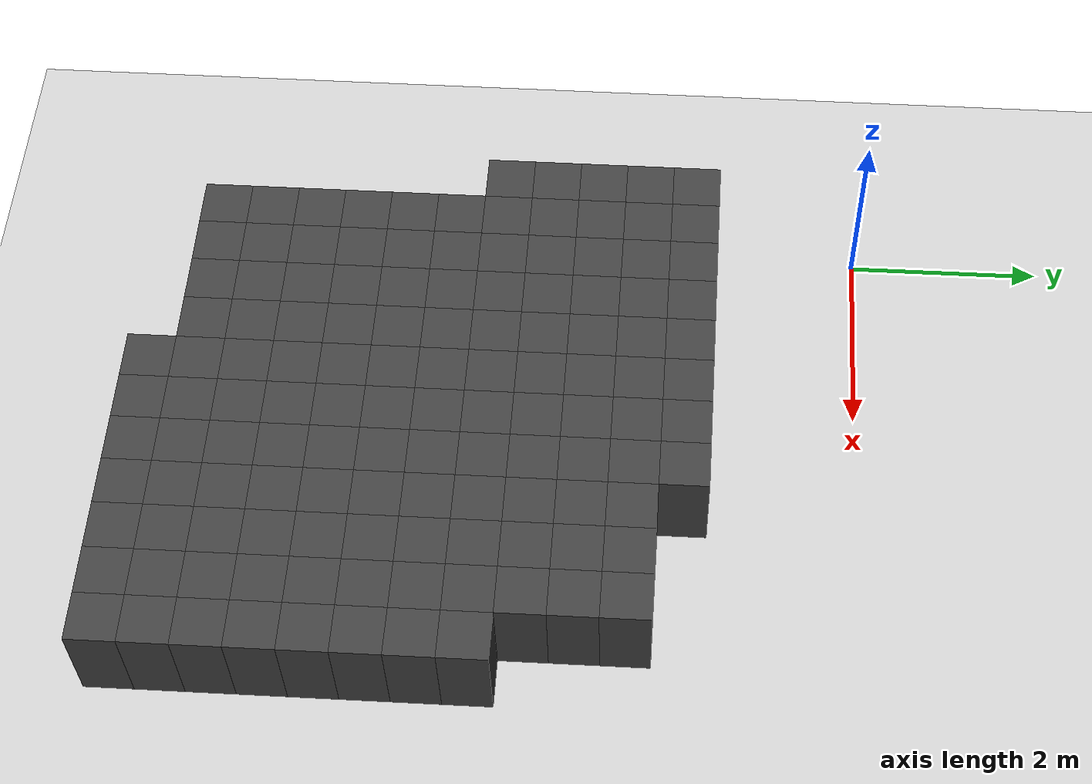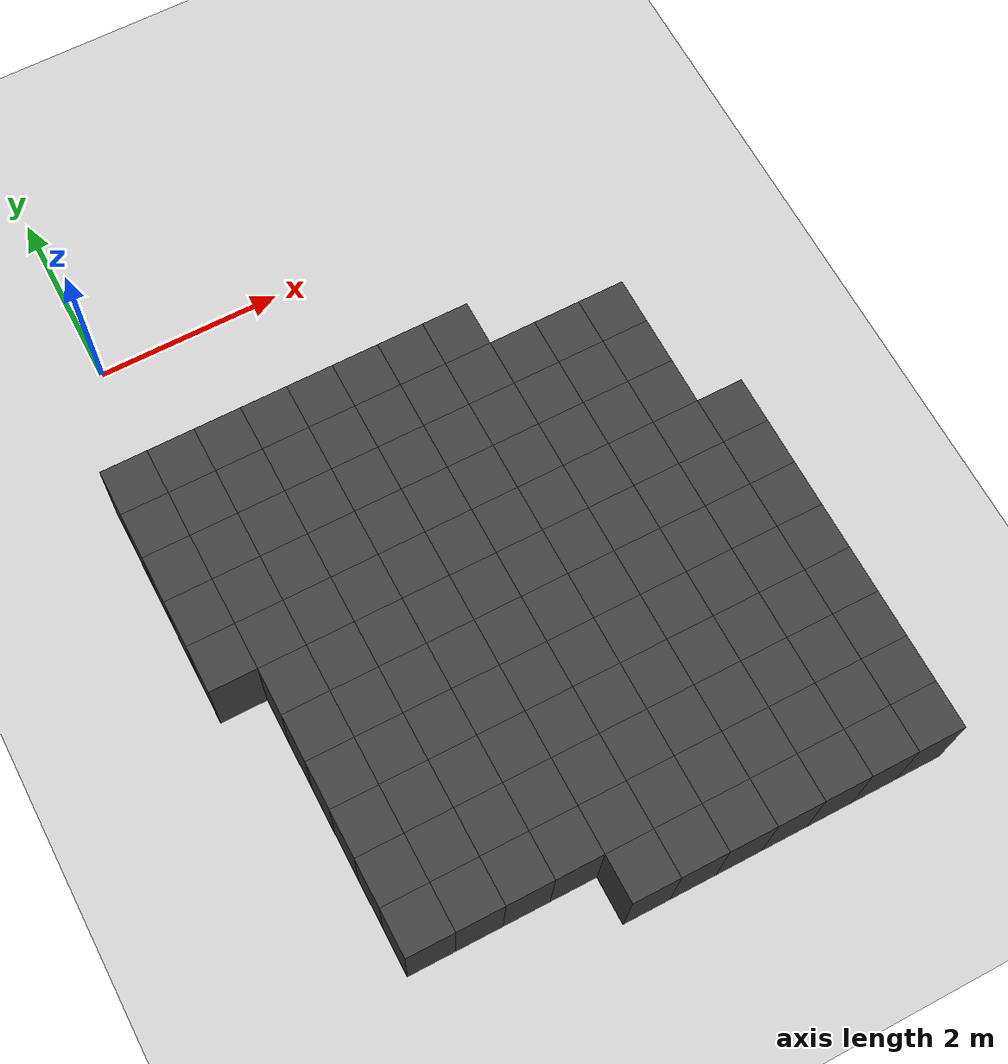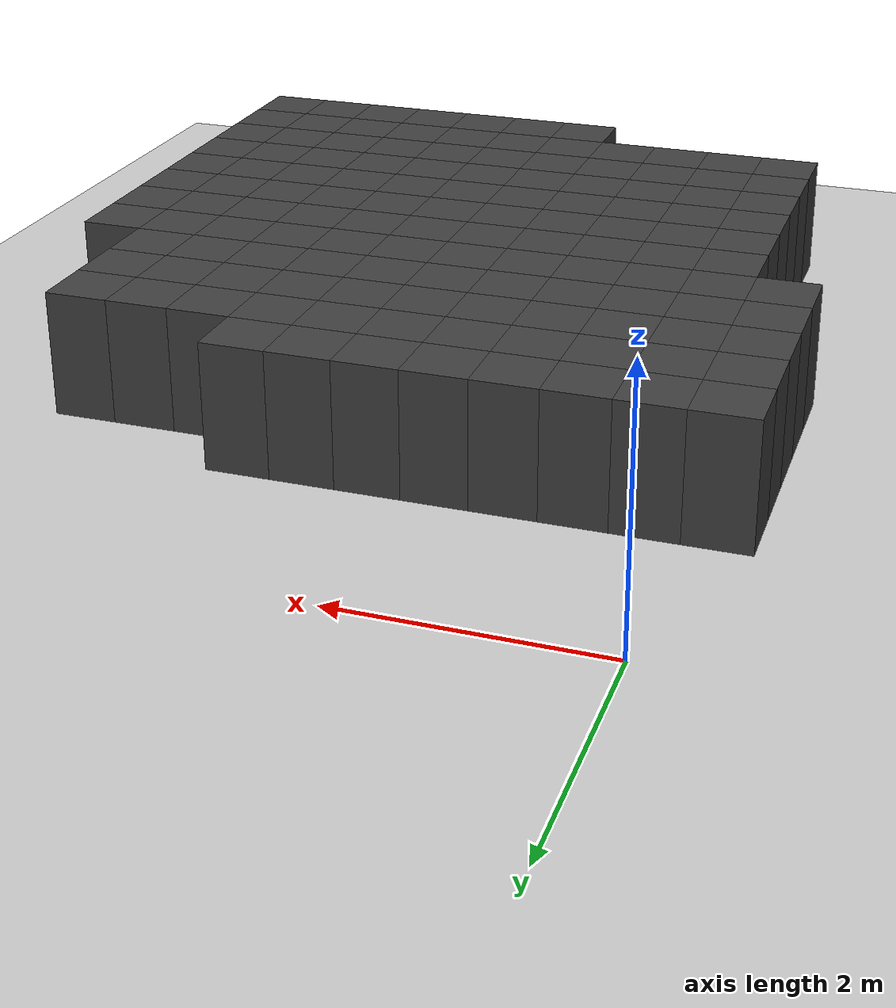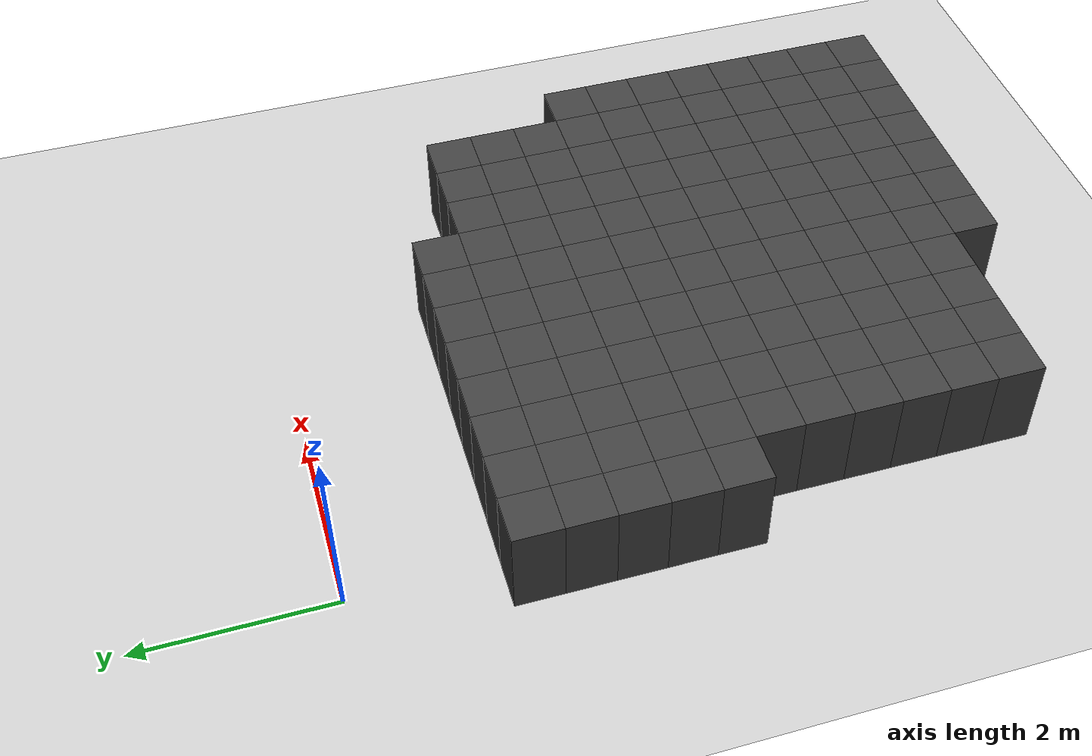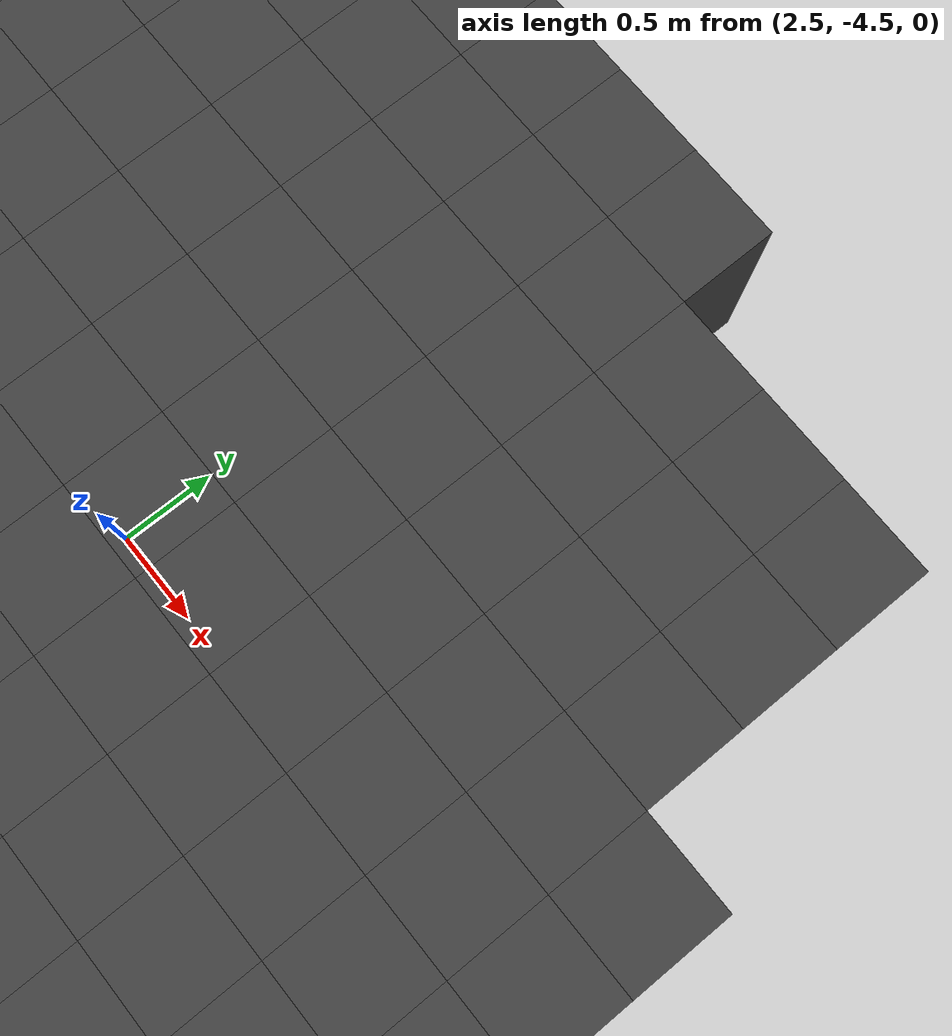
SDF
<sdf version="1.7">
 <world name="map_10764">
  <model name="ground_plane">
   <static>true</static>
   <link name="link">
    <collision name="collision">
     <geometry><plane><normal>0 0 1</normal><size>200 200</size></plane></geometry>
    </collision>
    <visual name="visual">
     <geometry><plane><normal>0 0 1</normal><size>200 200</size></plane></geometry>
     <material><ambient>0.8 0.8 0.8 1</ambient><diffuse>0.8 0.8 0.8 1</diffuse></material>
    </visual>
   </link>
  </model>
  <model name="maze_environment">
   <static>true</static>
   <link name="wall_1144">
    <pose>-0.250 -1.750 0.500 0 0 0</pose>
    <collision name="col"><geometry><box><size>0.5 0.5 1.0</size></box></geometry></collision>
    <visual name="vis">
     <geometry><box><size>0.5 0.5 1.0</size></box></geometry>
     <material><ambient>0.15 0.15 0.15 1</ambient><diffuse>0.25 0.25 0.25 1</diffuse></material>
    </visual>
   </link>
   <link name="wall_1145">
    <pose>0.250 -1.750 0.500 0 0 0</pose>
    <collision name="col"><geometry><box><size>0.5 0.5 1.0</size></box></geometry></collision>
    <visual name="vis">
     <geometry><box><size>0.5 0.5 1.0</size></box></geometry>
     <material><ambient>0.15 0.15 0.15 1</ambient><diffuse>0.25 0.25 0.25 1</diffuse></material>
    </visual>
   </link>
   <link name="wall_1146">
    <pose>0.750 -1.750 0.500 0 0 0</pose>
    <collision name="col"><geometry><box><size>0.5 0.5 1.0</size></box></geometry></collision>
    <visual name="vis">
     <geometry><box><size>0.5 0.5 1.0</size></box></geometry>
     <material><ambient>0.15 0.15 0.15 1</ambient><diffuse>0.25 0.25 0.25 1</diffuse></material>
    </visual>
   </link>
   <link name="wall_1147">
    <pose>1.250 -1.750 0.500 0 0 0</pose>
    <collision name="col"><geometry><box><size>0.5 0.5 1.0</size></box></geometry></collision>
    <visual name="vis">
     <geometry><box><size>0.5 0.5 1.0</size></box></geometry>
     <material><ambient>0.15 0.15 0.15 1</ambient><diffuse>0.25 0.25 0.25 1</diffuse></material>
    </visual>
   </link>
   <link name="wall_1148">
    <pose>1.750 -1.750 0.500 0 0 0</pose>
    <collision name="col"><geometry><box><size>0.5 0.5 1.0</size></box></geometry></collision>
    <visual name="vis">
     <geometry><box><size>0.5 0.5 1.0</size></box></geometry>
     <material><ambient>0.15 0.15 0.15 1</ambient><diffuse>0.25 0.25 0.25 1</diffuse></material>
    </visual>
   </link>
   <link name="wall_1149">
    <pose>2.250 -1.750 0.500 0 0 0</pose>
    <collision name="col"><geometry><box><size>0.5 0.5 1.0</size></box></geometry></collision>
    <visual name="vis">
     <geometry><box><size>0.5 0.5 1.0</size></box></geometry>
     <material><ambient>0.15 0.15 0.15 1</ambient><diffuse>0.25 0.25 0.25 1</diffuse></material>
    </visual>
   </link>
   <link name="wall_1150">
    <pose>2.750 -1.750 0.500 0 0 0</pose>
    <collision name="col"><geometry><box><size>0.5 0.5 1.0</size></box></geometry></collision>
    <visual name="vis">
     <geometry><box><size>0.5 0.5 1.0</size></box></geometry>
     <material><ambient>0.15 0.15 0.15 1</ambient><diffuse>0.25 0.25 0.25 1</diffuse></material>
    </visual>
   </link>
   <link name="wall_1151">
    <pose>3.250 -1.750 0.500 0 0 0</pose>
    <collision name="col"><geometry><box><size>0.5 0.5 1.0</size></box></geometry></collision>
    <visual name="vis">
     <geometry><box><size>0.5 0.5 1.0</size></box></geometry>
     <material><ambient>0.15 0.15 0.15 1</ambient><diffuse>0.25 0.25 0.25 1</diffuse></material>
    </visual>
   </link>
   <link name="wall_1185">
    <pose>-0.250 -2.250 0.500 0 0 0</pose>
    <collision name="col"><geometry><box><size>0.5 0.5 1.0</size></box></geometry></collision>
    <visual name="vis">
     <geometry><box><size>0.5 0.5 1.0</size></box></geometry>
     <material><ambient>0.15 0.15 0.15 1</ambient><diffuse>0.25 0.25 0.25 1</diffuse></material>
    </visual>
   </link>
   <link name="wall_1186">
    <pose>0.250 -2.250 0.500 0 0 0</pose>
    <collision name="col"><geometry><box><size>0.5 0.5 1.0</size></box></geometry></collision>
    <visual name="vis">
     <geometry><box><size>0.5 0.5 1.0</size></box></geometry>
     <material><ambient>0.15 0.15 0.15 1</ambient><diffuse>0.25 0.25 0.25 1</diffuse></material>
    </visual>
   </link>
   <link name="wall_1187">
    <pose>0.750 -2.250 0.500 0 0 0</pose>
    <collision name="col"><geometry><box><size>0.5 0.5 1.0</size></box></geometry></collision>
    <visual name="vis">
     <geometry><box><size>0.5 0.5 1.0</size></box></geometry>
     <material><ambient>0.15 0.15 0.15 1</ambient><diffuse>0.25 0.25 0.25 1</diffuse></material>
    </visual>
   </link>
   <link name="wall_1188">
    <pose>1.250 -2.250 0.500 0 0 0</pose>
    <collision name="col"><geometry><box><size>0.5 0.5 1.0</size></box></geometry></collision>
    <visual name="vis">
     <geometry><box><size>0.5 0.5 1.0</size></box></geometry>
     <material><ambient>0.15 0.15 0.15 1</ambient><diffuse>0.25 0.25 0.25 1</diffuse></material>
    </visual>
   </link>
   <link name="wall_1189">
    <pose>1.750 -2.250 0.500 0 0 0</pose>
    <collision name="col"><geometry><box><size>0.5 0.5 1.0</size></box></geometry></collision>
    <visual name="vis">
     <geometry><box><size>0.5 0.5 1.0</size></box></geometry>
     <material><ambient>0.15 0.15 0.15 1</ambient><diffuse>0.25 0.25 0.25 1</diffuse></material>
    </visual>
   </link>
   <link name="wall_1190">
    <pose>2.250 -2.250 0.500 0 0 0</pose>
    <collision name="col"><geometry><box><size>0.5 0.5 1.0</size></box></geometry></collision>
    <visual name="vis">
     <geometry><box><size>0.5 0.5 1.0</size></box></geometry>
     <material><ambient>0.15 0.15 0.15 1</ambient><diffuse>0.25 0.25 0.25 1</diffuse></material>
    </visual>
   </link>
   <link name="wall_1191">
    <pose>2.750 -2.250 0.500 0 0 0</pose>
    <collision name="col"><geometry><box><size>0.5 0.5 1.0</size></box></geometry></collision>
    <visual name="vis">
     <geometry><box><size>0.5 0.5 1.0</size></box></geometry>
     <material><ambient>0.15 0.15 0.15 1</ambient><diffuse>0.25 0.25 0.25 1</diffuse></material>
    </visual>
   </link>
   <link name="wall_1192">
    <pose>3.250 -2.250 0.500 0 0 0</pose>
    <collision name="col"><geometry><box><size>0.5 0.5 1.0</size></box></geometry></collision>
    <visual name="vis">
     <geometry><box><size>0.5 0.5 1.0</size></box></geometry>
     <material><ambient>0.15 0.15 0.15 1</ambient><diffuse>0.25 0.25 0.25 1</diffuse></material>
    </visual>
   </link>
   <link name="wall_1193">
    <pose>3.750 -2.250 0.500 0 0 0</pose>
    <collision name="col"><geometry><box><size>0.5 0.5 1.0</size></box></geometry></collision>
    <visual name="vis">
     <geometry><box><size>0.5 0.5 1.0</size></box></geometry>
     <material><ambient>0.15 0.15 0.15 1</ambient><diffuse>0.25 0.25 0.25 1</diffuse></material>
    </visual>
   </link>
   <link name="wall_1194">
    <pose>4.250 -2.250 0.500 0 0 0</pose>
    <collision name="col"><geometry><box><size>0.5 0.5 1.0</size></box></geometry></collision>
    <visual name="vis">
     <geometry><box><size>0.5 0.5 1.0</size></box></geometry>
     <material><ambient>0.15 0.15 0.15 1</ambient><diffuse>0.25 0.25 0.25 1</diffuse></material>
    </visual>
   </link>
   <link name="wall_1195">
    <pose>4.750 -2.250 0.500 0 0 0</pose>
    <collision name="col"><geometry><box><size>0.5 0.5 1.0</size></box></geometry></collision>
    <visual name="vis">
     <geometry><box><size>0.5 0.5 1.0</size></box></geometry>
     <material><ambient>0.15 0.15 0.15 1</ambient><diffuse>0.25 0.25 0.25 1</diffuse></material>
    </visual>
   </link>
   <link name="wall_1226">
    <pose>-0.250 -2.750 0.500 0 0 0</pose>
    <collision name="col"><geometry><box><size>0.5 0.5 1.0</size></box></geometry></collision>
    <visual name="vis">
     <geometry><box><size>0.5 0.5 1.0</size></box></geometry>
     <material><ambient>0.15 0.15 0.15 1</ambient><diffuse>0.25 0.25 0.25 1</diffuse></material>
    </visual>
   </link>
   <link name="wall_1227">
    <pose>0.250 -2.750 0.500 0 0 0</pose>
    <collision name="col"><geometry><box><size>0.5 0.5 1.0</size></box></geometry></collision>
    <visual name="vis">
     <geometry><box><size>0.5 0.5 1.0</size></box></geometry>
     <material><ambient>0.15 0.15 0.15 1</ambient><diffuse>0.25 0.25 0.25 1</diffuse></material>
    </visual>
   </link>
   <link name="wall_1228">
    <pose>0.750 -2.750 0.500 0 0 0</pose>
    <collision name="col"><geometry><box><size>0.5 0.5 1.0</size></box></geometry></collision>
    <visual name="vis">
     <geometry><box><size>0.5 0.5 1.0</size></box></geometry>
     <material><ambient>0.15 0.15 0.15 1</ambient><diffuse>0.25 0.25 0.25 1</diffuse></material>
    </visual>
   </link>
   <link name="wall_1229">
    <pose>1.250 -2.750 0.500 0 0 0</pose>
    <collision name="col"><geometry><box><size>0.5 0.5 1.0</size></box></geometry></collision>
    <visual name="vis">
     <geometry><box><size>0.5 0.5 1.0</size></box></geometry>
     <material><ambient>0.15 0.15 0.15 1</ambient><diffuse>0.25 0.25 0.25 1</diffuse></material>
    </visual>
   </link>
   <link name="wall_1230">
    <pose>1.750 -2.750 0.500 0 0 0</pose>
    <collision name="col"><geometry><box><size>0.5 0.5 1.0</size></box></geometry></collision>
    <visual name="vis">
     <geometry><box><size>0.5 0.5 1.0</size></box></geometry>
     <material><ambient>0.15 0.15 0.15 1</ambient><diffuse>0.25 0.25 0.25 1</diffuse></material>
    </visual>
   </link>
   <link name="wall_1231">
    <pose>2.250 -2.750 0.500 0 0 0</pose>
    <collision name="col"><geometry><box><size>0.5 0.5 1.0</size></box></geometry></collision>
    <visual name="vis">
     <geometry><box><size>0.5 0.5 1.0</size></box></geometry>
     <material><ambient>0.15 0.15 0.15 1</ambient><diffuse>0.25 0.25 0.25 1</diffuse></material>
    </visual>
   </link>
   <link name="wall_1232">
    <pose>2.750 -2.750 0.500 0 0 0</pose>
    <collision name="col"><geometry><box><size>0.5 0.5 1.0</size></box></geometry></collision>
    <visual name="vis">
     <geometry><box><size>0.5 0.5 1.0</size></box></geometry>
     <material><ambient>0.15 0.15 0.15 1</ambient><diffuse>0.25 0.25 0.25 1</diffuse></material>
    </visual>
   </link>
   <link name="wall_1233">
    <pose>3.250 -2.750 0.500 0 0 0</pose>
    <collision name="col"><geometry><box><size>0.5 0.5 1.0</size></box></geometry></collision>
    <visual name="vis">
     <geometry><box><size>0.5 0.5 1.0</size></box></geometry>
     <material><ambient>0.15 0.15 0.15 1</ambient><diffuse>0.25 0.25 0.25 1</diffuse></material>
    </visual>
   </link>
   <link name="wall_1234">
    <pose>3.750 -2.750 0.500 0 0 0</pose>
    <collision name="col"><geometry><box><size>0.5 0.5 1.0</size></box></geometry></collision>
    <visual name="vis">
     <geometry><box><size>0.5 0.5 1.0</size></box></geometry>
     <material><ambient>0.15 0.15 0.15 1</ambient><diffuse>0.25 0.25 0.25 1</diffuse></material>
    </visual>
   </link>
   <link name="wall_1235">
    <pose>4.250 -2.750 0.500 0 0 0</pose>
    <collision name="col"><geometry><box><size>0.5 0.5 1.0</size></box></geometry></collision>
    <visual name="vis">
     <geometry><box><size>0.5 0.5 1.0</size></box></geometry>
     <material><ambient>0.15 0.15 0.15 1</ambient><diffuse>0.25 0.25 0.25 1</diffuse></material>
    </visual>
   </link>
   <link name="wall_1236">
    <pose>4.750 -2.750 0.500 0 0 0</pose>
    <collision name="col"><geometry><box><size>0.5 0.5 1.0</size></box></geometry></collision>
    <visual name="vis">
     <geometry><box><size>0.5 0.5 1.0</size></box></geometry>
     <material><ambient>0.15 0.15 0.15 1</ambient><diffuse>0.25 0.25 0.25 1</diffuse></material>
    </visual>
   </link>
   <link name="wall_1268">
    <pose>-0.250 -3.250 0.500 0 0 0</pose>
    <collision name="col"><geometry><box><size>0.5 0.5 1.0</size></box></geometry></collision>
    <visual name="vis">
     <geometry><box><size>0.5 0.5 1.0</size></box></geometry>
     <material><ambient>0.15 0.15 0.15 1</ambient><diffuse>0.25 0.25 0.25 1</diffuse></material>
    </visual>
   </link>
   <link name="wall_1269">
    <pose>0.250 -3.250 0.500 0 0 0</pose>
    <collision name="col"><geometry><box><size>0.5 0.5 1.0</size></box></geometry></collision>
    <visual name="vis">
     <geometry><box><size>0.5 0.5 1.0</size></box></geometry>
     <material><ambient>0.15 0.15 0.15 1</ambient><diffuse>0.25 0.25 0.25 1</diffuse></material>
    </visual>
   </link>
   <link name="wall_1270">
    <pose>0.750 -3.250 0.500 0 0 0</pose>
    <collision name="col"><geometry><box><size>0.5 0.5 1.0</size></box></geometry></collision>
    <visual name="vis">
     <geometry><box><size>0.5 0.5 1.0</size></box></geometry>
     <material><ambient>0.15 0.15 0.15 1</ambient><diffuse>0.25 0.25 0.25 1</diffuse></material>
    </visual>
   </link>
   <link name="wall_1271">
    <pose>1.250 -3.250 0.500 0 0 0</pose>
    <collision name="col"><geometry><box><size>0.5 0.5 1.0</size></box></geometry></collision>
    <visual name="vis">
     <geometry><box><size>0.5 0.5 1.0</size></box></geometry>
     <material><ambient>0.15 0.15 0.15 1</ambient><diffuse>0.25 0.25 0.25 1</diffuse></material>
    </visual>
   </link>
   <link name="wall_1272">
    <pose>1.750 -3.250 0.500 0 0 0</pose>
    <collision name="col"><geometry><box><size>0.5 0.5 1.0</size></box></geometry></collision>
    <visual name="vis">
     <geometry><box><size>0.5 0.5 1.0</size></box></geometry>
     <material><ambient>0.15 0.15 0.15 1</ambient><diffuse>0.25 0.25 0.25 1</diffuse></material>
    </visual>
   </link>
   <link name="wall_1273">
    <pose>2.250 -3.250 0.500 0 0 0</pose>
    <collision name="col"><geometry><box><size>0.5 0.5 1.0</size></box></geometry></collision>
    <visual name="vis">
     <geometry><box><size>0.5 0.5 1.0</size></box></geometry>
     <material><ambient>0.15 0.15 0.15 1</ambient><diffuse>0.25 0.25 0.25 1</diffuse></material>
    </visual>
   </link>
   <link name="wall_1274">
    <pose>2.750 -3.250 0.500 0 0 0</pose>
    <collision name="col"><geometry><box><size>0.5 0.5 1.0</size></box></geometry></collision>
    <visual name="vis">
     <geometry><box><size>0.5 0.5 1.0</size></box></geometry>
     <material><ambient>0.15 0.15 0.15 1</ambient><diffuse>0.25 0.25 0.25 1</diffuse></material>
    </visual>
   </link>
   <link name="wall_1275">
    <pose>3.250 -3.250 0.500 0 0 0</pose>
    <collision name="col"><geometry><box><size>0.5 0.5 1.0</size></box></geometry></collision>
    <visual name="vis">
     <geometry><box><size>0.5 0.5 1.0</size></box></geometry>
     <material><ambient>0.15 0.15 0.15 1</ambient><diffuse>0.25 0.25 0.25 1</diffuse></material>
    </visual>
   </link>
   <link name="wall_1276">
    <pose>3.750 -3.250 0.500 0 0 0</pose>
    <collision name="col"><geometry><box><size>0.5 0.5 1.0</size></box></geometry></collision>
    <visual name="vis">
     <geometry><box><size>0.5 0.5 1.0</size></box></geometry>
     <material><ambient>0.15 0.15 0.15 1</ambient><diffuse>0.25 0.25 0.25 1</diffuse></material>
    </visual>
   </link>
   <link name="wall_1277">
    <pose>4.250 -3.250 0.500 0 0 0</pose>
    <collision name="col"><geometry><box><size>0.5 0.5 1.0</size></box></geometry></collision>
    <visual name="vis">
     <geometry><box><size>0.5 0.5 1.0</size></box></geometry>
     <material><ambient>0.15 0.15 0.15 1</ambient><diffuse>0.25 0.25 0.25 1</diffuse></material>
    </visual>
   </link>
   <link name="wall_1278">
    <pose>4.750 -3.250 0.500 0 0 0</pose>
    <collision name="col"><geometry><box><size>0.5 0.5 1.0</size></box></geometry></collision>
    <visual name="vis">
     <geometry><box><size>0.5 0.5 1.0</size></box></geometry>
     <material><ambient>0.15 0.15 0.15 1</ambient><diffuse>0.25 0.25 0.25 1</diffuse></material>
    </visual>
   </link>
   <link name="wall_1310">
    <pose>-0.250 -3.750 0.500 0 0 0</pose>
    <collision name="col"><geometry><box><size>0.5 0.5 1.0</size></box></geometry></collision>
    <visual name="vis">
     <geometry><box><size>0.5 0.5 1.0</size></box></geometry>
     <material><ambient>0.15 0.15 0.15 1</ambient><diffuse>0.25 0.25 0.25 1</diffuse></material>
    </visual>
   </link>
   <link name="wall_1311">
    <pose>0.250 -3.750 0.500 0 0 0</pose>
    <collision name="col"><geometry><box><size>0.5 0.5 1.0</size></box></geometry></collision>
    <visual name="vis">
     <geometry><box><size>0.5 0.5 1.0</size></box></geometry>
     <material><ambient>0.15 0.15 0.15 1</ambient><diffuse>0.25 0.25 0.25 1</diffuse></material>
    </visual>
   </link>
   <link name="wall_1312">
    <pose>0.750 -3.750 0.500 0 0 0</pose>
    <collision name="col"><geometry><box><size>0.5 0.5 1.0</size></box></geometry></collision>
    <visual name="vis">
     <geometry><box><size>0.5 0.5 1.0</size></box></geometry>
     <material><ambient>0.15 0.15 0.15 1</ambient><diffuse>0.25 0.25 0.25 1</diffuse></material>
    </visual>
   </link>
   <link name="wall_1313">
    <pose>1.250 -3.750 0.500 0 0 0</pose>
    <collision name="col"><geometry><box><size>0.5 0.5 1.0</size></box></geometry></collision>
    <visual name="vis">
     <geometry><box><size>0.5 0.5 1.0</size></box></geometry>
     <material><ambient>0.15 0.15 0.15 1</ambient><diffuse>0.25 0.25 0.25 1</diffuse></material>
    </visual>
   </link>
   <link name="wall_1314">
    <pose>1.750 -3.750 0.500 0 0 0</pose>
    <collision name="col"><geometry><box><size>0.5 0.5 1.0</size></box></geometry></collision>
    <visual name="vis">
     <geometry><box><size>0.5 0.5 1.0</size></box></geometry>
     <material><ambient>0.15 0.15 0.15 1</ambient><diffuse>0.25 0.25 0.25 1</diffuse></material>
    </visual>
   </link>
   <link name="wall_1315">
    <pose>2.250 -3.750 0.500 0 0 0</pose>
    <collision name="col"><geometry><box><size>0.5 0.5 1.0</size></box></geometry></collision>
    <visual name="vis">
     <geometry><box><size>0.5 0.5 1.0</size></box></geometry>
     <material><ambient>0.15 0.15 0.15 1</ambient><diffuse>0.25 0.25 0.25 1</diffuse></material>
    </visual>
   </link>
   <link name="wall_1316">
    <pose>2.750 -3.750 0.500 0 0 0</pose>
    <collision name="col"><geometry><box><size>0.5 0.5 1.0</size></box></geometry></collision>
    <visual name="vis">
     <geometry><box><size>0.5 0.5 1.0</size></box></geometry>
     <material><ambient>0.15 0.15 0.15 1</ambient><diffuse>0.25 0.25 0.25 1</diffuse></material>
    </visual>
   </link>
   <link name="wall_1317">
    <pose>3.250 -3.750 0.500 0 0 0</pose>
    <collision name="col"><geometry><box><size>0.5 0.5 1.0</size></box></geometry></collision>
    <visual name="vis">
     <geometry><box><size>0.5 0.5 1.0</size></box></geometry>
     <material><ambient>0.15 0.15 0.15 1</ambient><diffuse>0.25 0.25 0.25 1</diffuse></material>
    </visual>
   </link>
   <link name="wall_1318">
    <pose>3.750 -3.750 0.500 0 0 0</pose>
    <collision name="col"><geometry><box><size>0.5 0.5 1.0</size></box></geometry></collision>
    <visual name="vis">
     <geometry><box><size>0.5 0.5 1.0</size></box></geometry>
     <material><ambient>0.15 0.15 0.15 1</ambient><diffuse>0.25 0.25 0.25 1</diffuse></material>
    </visual>
   </link>
   <link name="wall_1319">
    <pose>4.250 -3.750 0.500 0 0 0</pose>
    <collision name="col"><geometry><box><size>0.5 0.5 1.0</size></box></geometry></collision>
    <visual name="vis">
     <geometry><box><size>0.5 0.5 1.0</size></box></geometry>
     <material><ambient>0.15 0.15 0.15 1</ambient><diffuse>0.25 0.25 0.25 1</diffuse></material>
    </visual>
   </link>
   <link name="wall_1320">
    <pose>4.750 -3.750 0.500 0 0 0</pose>
    <collision name="col"><geometry><box><size>0.5 0.5 1.0</size></box></geometry></collision>
    <visual name="vis">
     <geometry><box><size>0.5 0.5 1.0</size></box></geometry>
     <material><ambient>0.15 0.15 0.15 1</ambient><diffuse>0.25 0.25 0.25 1</diffuse></material>
    </visual>
   </link>
   <link name="wall_1321">
    <pose>5.250 -3.750 0.500 0 0 0</pose>
    <collision name="col"><geometry><box><size>0.5 0.5 1.0</size></box></geometry></collision>
    <visual name="vis">
     <geometry><box><size>0.5 0.5 1.0</size></box></geometry>
     <material><ambient>0.15 0.15 0.15 1</ambient><diffuse>0.25 0.25 0.25 1</diffuse></material>
    </visual>
   </link>
   <link name="wall_1355">
    <pose>0.250 -4.250 0.500 0 0 0</pose>
    <collision name="col"><geometry><box><size>0.5 0.5 1.0</size></box></geometry></collision>
    <visual name="vis">
     <geometry><box><size>0.5 0.5 1.0</size></box></geometry>
     <material><ambient>0.15 0.15 0.15 1</ambient><diffuse>0.25 0.25 0.25 1</diffuse></material>
    </visual>
   </link>
   <link name="wall_1356">
    <pose>0.750 -4.250 0.500 0 0 0</pose>
    <collision name="col"><geometry><box><size>0.5 0.5 1.0</size></box></geometry></collision>
    <visual name="vis">
     <geometry><box><size>0.5 0.5 1.0</size></box></geometry>
     <material><ambient>0.15 0.15 0.15 1</ambient><diffuse>0.25 0.25 0.25 1</diffuse></material>
    </visual>
   </link>
   <link name="wall_1357">
    <pose>1.250 -4.250 0.500 0 0 0</pose>
    <collision name="col"><geometry><box><size>0.5 0.5 1.0</size></box></geometry></collision>
    <visual name="vis">
     <geometry><box><size>0.5 0.5 1.0</size></box></geometry>
     <material><ambient>0.15 0.15 0.15 1</ambient><diffuse>0.25 0.25 0.25 1</diffuse></material>
    </visual>
   </link>
   <link name="wall_1358">
    <pose>1.750 -4.250 0.500 0 0 0</pose>
    <collision name="col"><geometry><box><size>0.5 0.5 1.0</size></box></geometry></collision>
    <visual name="vis">
     <geometry><box><size>0.5 0.5 1.0</size></box></geometry>
     <material><ambient>0.15 0.15 0.15 1</ambient><diffuse>0.25 0.25 0.25 1</diffuse></material>
    </visual>
   </link>
   <link name="wall_1359">
    <pose>2.250 -4.250 0.500 0 0 0</pose>
    <collision name="col"><geometry><box><size>0.5 0.5 1.0</size></box></geometry></collision>
    <visual name="vis">
     <geometry><box><size>0.5 0.5 1.0</size></box></geometry>
     <material><ambient>0.15 0.15 0.15 1</ambient><diffuse>0.25 0.25 0.25 1</diffuse></material>
    </visual>
   </link>
   <link name="wall_1360">
    <pose>2.750 -4.250 0.500 0 0 0</pose>
    <collision name="col"><geometry><box><size>0.5 0.5 1.0</size></box></geometry></collision>
    <visual name="vis">
     <geometry><box><size>0.5 0.5 1.0</size></box></geometry>
     <material><ambient>0.15 0.15 0.15 1</ambient><diffuse>0.25 0.25 0.25 1</diffuse></material>
    </visual>
   </link>
   <link name="wall_1361">
    <pose>3.250 -4.250 0.500 0 0 0</pose>
    <collision name="col"><geometry><box><size>0.5 0.5 1.0</size></box></geometry></collision>
    <visual name="vis">
     <geometry><box><size>0.5 0.5 1.0</size></box></geometry>
     <material><ambient>0.15 0.15 0.15 1</ambient><diffuse>0.25 0.25 0.25 1</diffuse></material>
    </visual>
   </link>
   <link name="wall_1362">
    <pose>3.750 -4.250 0.500 0 0 0</pose>
    <collision name="col"><geometry><box><size>0.5 0.5 1.0</size></box></geometry></collision>
    <visual name="vis">
     <geometry><box><size>0.5 0.5 1.0</size></box></geometry>
     <material><ambient>0.15 0.15 0.15 1</ambient><diffuse>0.25 0.25 0.25 1</diffuse></material>
    </visual>
   </link>
   <link name="wall_1363">
    <pose>4.250 -4.250 0.500 0 0 0</pose>
    <collision name="col"><geometry><box><size>0.5 0.5 1.0</size></box></geometry></collision>
    <visual name="vis">
     <geometry><box><size>0.5 0.5 1.0</size></box></geometry>
     <material><ambient>0.15 0.15 0.15 1</ambient><diffuse>0.25 0.25 0.25 1</diffuse></material>
    </visual>
   </link>
   <link name="wall_1364">
    <pose>4.750 -4.250 0.500 0 0 0</pose>
    <collision name="col"><geometry><box><size>0.5 0.5 1.0</size></box></geometry></collision>
    <visual name="vis">
     <geometry><box><size>0.5 0.5 1.0</size></box></geometry>
     <material><ambient>0.15 0.15 0.15 1</ambient><diffuse>0.25 0.25 0.25 1</diffuse></material>
    </visual>
   </link>
   <link name="wall_1365">
    <pose>5.250 -4.250 0.500 0 0 0</pose>
    <collision name="col"><geometry><box><size>0.5 0.5 1.0</size></box></geometry></collision>
    <visual name="vis">
     <geometry><box><size>0.5 0.5 1.0</size></box></geometry>
     <material><ambient>0.15 0.15 0.15 1</ambient><diffuse>0.25 0.25 0.25 1</diffuse></material>
    </visual>
   </link>
   <link name="wall_1399">
    <pose>0.250 -4.750 0.500 0 0 0</pose>
    <collision name="col"><geometry><box><size>0.5 0.5 1.0</size></box></geometry></collision>
    <visual name="vis">
     <geometry><box><size>0.5 0.5 1.0</size></box></geometry>
     <material><ambient>0.15 0.15 0.15 1</ambient><diffuse>0.25 0.25 0.25 1</diffuse></material>
    </visual>
   </link>
   <link name="wall_1400">
    <pose>0.750 -4.750 0.500 0 0 0</pose>
    <collision name="col"><geometry><box><size>0.5 0.5 1.0</size></box></geometry></collision>
    <visual name="vis">
     <geometry><box><size>0.5 0.5 1.0</size></box></geometry>
     <material><ambient>0.15 0.15 0.15 1</ambient><diffuse>0.25 0.25 0.25 1</diffuse></material>
    </visual>
   </link>
   <link name="wall_1401">
    <pose>1.250 -4.750 0.500 0 0 0</pose>
    <collision name="col"><geometry><box><size>0.5 0.5 1.0</size></box></geometry></collision>
    <visual name="vis">
     <geometry><box><size>0.5 0.5 1.0</size></box></geometry>
     <material><ambient>0.15 0.15 0.15 1</ambient><diffuse>0.25 0.25 0.25 1</diffuse></material>
    </visual>
   </link>
   <link name="wall_1402">
    <pose>1.750 -4.750 0.500 0 0 0</pose>
    <collision name="col"><geometry><box><size>0.5 0.5 1.0</size></box></geometry></collision>
    <visual name="vis">
     <geometry><box><size>0.5 0.5 1.0</size></box></geometry>
     <material><ambient>0.15 0.15 0.15 1</ambient><diffuse>0.25 0.25 0.25 1</diffuse></material>
    </visual>
   </link>
   <link name="wall_1403">
    <pose>2.250 -4.750 0.500 0 0 0</pose>
    <collision name="col"><geometry><box><size>0.5 0.5 1.0</size></box></geometry></collision>
    <visual name="vis">
     <geometry><box><size>0.5 0.5 1.0</size></box></geometry>
     <material><ambient>0.15 0.15 0.15 1</ambient><diffuse>0.25 0.25 0.25 1</diffuse></material>
    </visual>
   </link>
   <link name="wall_1404">
    <pose>2.750 -4.750 0.500 0 0 0</pose>
    <collision name="col"><geometry><box><size>0.5 0.5 1.0</size></box></geometry></collision>
    <visual name="vis">
     <geometry><box><size>0.5 0.5 1.0</size></box></geometry>
     <material><ambient>0.15 0.15 0.15 1</ambient><diffuse>0.25 0.25 0.25 1</diffuse></material>
    </visual>
   </link>
   <link name="wall_1405">
    <pose>3.250 -4.750 0.500 0 0 0</pose>
    <collision name="col"><geometry><box><size>0.5 0.5 1.0</size></box></geometry></collision>
    <visual name="vis">
     <geometry><box><size>0.5 0.5 1.0</size></box></geometry>
     <material><ambient>0.15 0.15 0.15 1</ambient><diffuse>0.25 0.25 0.25 1</diffuse></material>
    </visual>
   </link>
   <link name="wall_1406">
    <pose>3.750 -4.750 0.500 0 0 0</pose>
    <collision name="col"><geometry><box><size>0.5 0.5 1.0</size></box></geometry></collision>
    <visual name="vis">
     <geometry><box><size>0.5 0.5 1.0</size></box></geometry>
     <material><ambient>0.15 0.15 0.15 1</ambient><diffuse>0.25 0.25 0.25 1</diffuse></material>
    </visual>
   </link>
   <link name="wall_1407">
    <pose>4.250 -4.750 0.500 0 0 0</pose>
    <collision name="col"><geometry><box><size>0.5 0.5 1.0</size></box></geometry></collision>
    <visual name="vis">
     <geometry><box><size>0.5 0.5 1.0</size></box></geometry>
     <material><ambient>0.15 0.15 0.15 1</ambient><diffuse>0.25 0.25 0.25 1</diffuse></material>
    </visual>
   </link>
   <link name="wall_1408">
    <pose>4.750 -4.750 0.500 0 0 0</pose>
    <collision name="col"><geometry><box><size>0.5 0.5 1.0</size></box></geometry></collision>
    <visual name="vis">
     <geometry><box><size>0.5 0.5 1.0</size></box></geometry>
     <material><ambient>0.15 0.15 0.15 1</ambient><diffuse>0.25 0.25 0.25 1</diffuse></material>
    </visual>
   </link>
   <link name="wall_1409">
    <pose>5.250 -4.750 0.500 0 0 0</pose>
    <collision name="col"><geometry><box><size>0.5 0.5 1.0</size></box></geometry></collision>
    <visual name="vis">
     <geometry><box><size>0.5 0.5 1.0</size></box></geometry>
     <material><ambient>0.15 0.15 0.15 1</ambient><diffuse>0.25 0.25 0.25 1</diffuse></material>
    </visual>
   </link>
   <link name="wall_1443">
    <pose>0.250 -5.250 0.500 0 0 0</pose>
    <collision name="col"><geometry><box><size>0.5 0.5 1.0</size></box></geometry></collision>
    <visual name="vis">
     <geometry><box><size>0.5 0.5 1.0</size></box></geometry>
     <material><ambient>0.15 0.15 0.15 1</ambient><diffuse>0.25 0.25 0.25 1</diffuse></material>
    </visual>
   </link>
   <link name="wall_1444">
    <pose>0.750 -5.250 0.500 0 0 0</pose>
    <collision name="col"><geometry><box><size>0.5 0.5 1.0</size></box></geometry></collision>
    <visual name="vis">
     <geometry><box><size>0.5 0.5 1.0</size></box></geometry>
     <material><ambient>0.15 0.15 0.15 1</ambient><diffuse>0.25 0.25 0.25 1</diffuse></material>
    </visual>
   </link>
   <link name="wall_1445">
    <pose>1.250 -5.250 0.500 0 0 0</pose>
    <collision name="col"><geometry><box><size>0.5 0.5 1.0</size></box></geometry></collision>
    <visual name="vis">
     <geometry><box><size>0.5 0.5 1.0</size></box></geometry>
     <material><ambient>0.15 0.15 0.15 1</ambient><diffuse>0.25 0.25 0.25 1</diffuse></material>
    </visual>
   </link>
   <link name="wall_1446">
    <pose>1.750 -5.250 0.500 0 0 0</pose>
    <collision name="col"><geometry><box><size>0.5 0.5 1.0</size></box></geometry></collision>
    <visual name="vis">
     <geometry><box><size>0.5 0.5 1.0</size></box></geometry>
     <material><ambient>0.15 0.15 0.15 1</ambient><diffuse>0.25 0.25 0.25 1</diffuse></material>
    </visual>
   </link>
   <link name="wall_1447">
    <pose>2.250 -5.250 0.500 0 0 0</pose>
    <collision name="col"><geometry><box><size>0.5 0.5 1.0</size></box></geometry></collision>
    <visual name="vis">
     <geometry><box><size>0.5 0.5 1.0</size></box></geometry>
     <material><ambient>0.15 0.15 0.15 1</ambient><diffuse>0.25 0.25 0.25 1</diffuse></material>
    </visual>
   </link>
   <link name="wall_1448">
    <pose>2.750 -5.250 0.500 0 0 0</pose>
    <collision name="col"><geometry><box><size>0.5 0.5 1.0</size></box></geometry></collision>
    <visual name="vis">
     <geometry><box><size>0.5 0.5 1.0</size></box></geometry>
     <material><ambient>0.15 0.15 0.15 1</ambient><diffuse>0.25 0.25 0.25 1</diffuse></material>
    </visual>
   </link>
   <link name="wall_1449">
    <pose>3.250 -5.250 0.500 0 0 0</pose>
    <collision name="col"><geometry><box><size>0.5 0.5 1.0</size></box></geometry></collision>
    <visual name="vis">
     <geometry><box><size>0.5 0.5 1.0</size></box></geometry>
     <material><ambient>0.15 0.15 0.15 1</ambient><diffuse>0.25 0.25 0.25 1</diffuse></material>
    </visual>
   </link>
   <link name="wall_1450">
    <pose>3.750 -5.250 0.500 0 0 0</pose>
    <collision name="col"><geometry><box><size>0.5 0.5 1.0</size></box></geometry></collision>
    <visual name="vis">
     <geometry><box><size>0.5 0.5 1.0</size></box></geometry>
     <material><ambient>0.15 0.15 0.15 1</ambient><diffuse>0.25 0.25 0.25 1</diffuse></material>
    </visual>
   </link>
   <link name="wall_1451">
    <pose>4.250 -5.250 0.500 0 0 0</pose>
    <collision name="col"><geometry><box><size>0.5 0.5 1.0</size></box></geometry></collision>
    <visual name="vis">
     <geometry><box><size>0.5 0.5 1.0</size></box></geometry>
     <material><ambient>0.15 0.15 0.15 1</ambient><diffuse>0.25 0.25 0.25 1</diffuse></material>
    </visual>
   </link>
   <link name="wall_1452">
    <pose>4.750 -5.250 0.500 0 0 0</pose>
    <collision name="col"><geometry><box><size>0.5 0.5 1.0</size></box></geometry></collision>
    <visual name="vis">
     <geometry><box><size>0.5 0.5 1.0</size></box></geometry>
     <material><ambient>0.15 0.15 0.15 1</ambient><diffuse>0.25 0.25 0.25 1</diffuse></material>
    </visual>
   </link>
   <link name="wall_1453">
    <pose>5.250 -5.250 0.500 0 0 0</pose>
    <collision name="col"><geometry><box><size>0.5 0.5 1.0</size></box></geometry></collision>
    <visual name="vis">
     <geometry><box><size>0.5 0.5 1.0</size></box></geometry>
     <material><ambient>0.15 0.15 0.15 1</ambient><diffuse>0.25 0.25 0.25 1</diffuse></material>
    </visual>
   </link>
   <link name="wall_1487">
    <pose>0.250 -5.750 0.500 0 0 0</pose>
    <collision name="col"><geometry><box><size>0.5 0.5 1.0</size></box></geometry></collision>
    <visual name="vis">
     <geometry><box><size>0.5 0.5 1.0</size></box></geometry>
     <material><ambient>0.15 0.15 0.15 1</ambient><diffuse>0.25 0.25 0.25 1</diffuse></material>
    </visual>
   </link>
   <link name="wall_1488">
    <pose>0.750 -5.750 0.500 0 0 0</pose>
    <collision name="col"><geometry><box><size>0.5 0.5 1.0</size></box></geometry></collision>
    <visual name="vis">
     <geometry><box><size>0.5 0.5 1.0</size></box></geometry>
     <material><ambient>0.15 0.15 0.15 1</ambient><diffuse>0.25 0.25 0.25 1</diffuse></material>
    </visual>
   </link>
   <link name="wall_1489">
    <pose>1.250 -5.750 0.500 0 0 0</pose>
    <collision name="col"><geometry><box><size>0.5 0.5 1.0</size></box></geometry></collision>
    <visual name="vis">
     <geometry><box><size>0.5 0.5 1.0</size></box></geometry>
     <material><ambient>0.15 0.15 0.15 1</ambient><diffuse>0.25 0.25 0.25 1</diffuse></material>
    </visual>
   </link>
   <link name="wall_1490">
    <pose>1.750 -5.750 0.500 0 0 0</pose>
    <collision name="col"><geometry><box><size>0.5 0.5 1.0</size></box></geometry></collision>
    <visual name="vis">
     <geometry><box><size>0.5 0.5 1.0</size></box></geometry>
     <material><ambient>0.15 0.15 0.15 1</ambient><diffuse>0.25 0.25 0.25 1</diffuse></material>
    </visual>
   </link>
   <link name="wall_1491">
    <pose>2.250 -5.750 0.500 0 0 0</pose>
    <collision name="col"><geometry><box><size>0.5 0.5 1.0</size></box></geometry></collision>
    <visual name="vis">
     <geometry><box><size>0.5 0.5 1.0</size></box></geometry>
     <material><ambient>0.15 0.15 0.15 1</ambient><diffuse>0.25 0.25 0.25 1</diffuse></material>
    </visual>
   </link>
   <link name="wall_1492">
    <pose>2.750 -5.750 0.500 0 0 0</pose>
    <collision name="col"><geometry><box><size>0.5 0.5 1.0</size></box></geometry></collision>
    <visual name="vis">
     <geometry><box><size>0.5 0.5 1.0</size></box></geometry>
     <material><ambient>0.15 0.15 0.15 1</ambient><diffuse>0.25 0.25 0.25 1</diffuse></material>
    </visual>
   </link>
   <link name="wall_1493">
    <pose>3.250 -5.750 0.500 0 0 0</pose>
    <collision name="col"><geometry><box><size>0.5 0.5 1.0</size></box></geometry></collision>
    <visual name="vis">
     <geometry><box><size>0.5 0.5 1.0</size></box></geometry>
     <material><ambient>0.15 0.15 0.15 1</ambient><diffuse>0.25 0.25 0.25 1</diffuse></material>
    </visual>
   </link>
   <link name="wall_1494">
    <pose>3.750 -5.750 0.500 0 0 0</pose>
    <collision name="col"><geometry><box><size>0.5 0.5 1.0</size></box></geometry></collision>
    <visual name="vis">
     <geometry><box><size>0.5 0.5 1.0</size></box></geometry>
     <material><ambient>0.15 0.15 0.15 1</ambient><diffuse>0.25 0.25 0.25 1</diffuse></material>
    </visual>
   </link>
   <link name="wall_1495">
    <pose>4.250 -5.750 0.500 0 0 0</pose>
    <collision name="col"><geometry><box><size>0.5 0.5 1.0</size></box></geometry></collision>
    <visual name="vis">
     <geometry><box><size>0.5 0.5 1.0</size></box></geometry>
     <material><ambient>0.15 0.15 0.15 1</ambient><diffuse>0.25 0.25 0.25 1</diffuse></material>
    </visual>
   </link>
   <link name="wall_1496">
    <pose>4.750 -5.750 0.500 0 0 0</pose>
    <collision name="col"><geometry><box><size>0.5 0.5 1.0</size></box></geometry></collision>
    <visual name="vis">
     <geometry><box><size>0.5 0.5 1.0</size></box></geometry>
     <material><ambient>0.15 0.15 0.15 1</ambient><diffuse>0.25 0.25 0.25 1</diffuse></material>
    </visual>
   </link>
   <link name="wall_1497">
    <pose>5.250 -5.750 0.500 0 0 0</pose>
    <collision name="col"><geometry><box><size>0.5 0.5 1.0</size></box></geometry></collision>
    <visual name="vis">
     <geometry><box><size>0.5 0.5 1.0</size></box></geometry>
     <material><ambient>0.15 0.15 0.15 1</ambient><diffuse>0.25 0.25 0.25 1</diffuse></material>
    </visual>
   </link>
   <link name="wall_1531">
    <pose>0.250 -6.250 0.500 0 0 0</pose>
    <collision name="col"><geometry><box><size>0.5 0.5 1.0</size></box></geometry></collision>
    <visual name="vis">
     <geometry><box><size>0.5 0.5 1.0</size></box></geometry>
     <material><ambient>0.15 0.15 0.15 1</ambient><diffuse>0.25 0.25 0.25 1</diffuse></material>
    </visual>
   </link>
   <link name="wall_1532">
    <pose>0.750 -6.250 0.500 0 0 0</pose>
    <collision name="col"><geometry><box><size>0.5 0.5 1.0</size></box></geometry></collision>
    <visual name="vis">
     <geometry><box><size>0.5 0.5 1.0</size></box></geometry>
     <material><ambient>0.15 0.15 0.15 1</ambient><diffuse>0.25 0.25 0.25 1</diffuse></material>
    </visual>
   </link>
   <link name="wall_1533">
    <pose>1.250 -6.250 0.500 0 0 0</pose>
    <collision name="col"><geometry><box><size>0.5 0.5 1.0</size></box></geometry></collision>
    <visual name="vis">
     <geometry><box><size>0.5 0.5 1.0</size></box></geometry>
     <material><ambient>0.15 0.15 0.15 1</ambient><diffuse>0.25 0.25 0.25 1</diffuse></material>
    </visual>
   </link>
   <link name="wall_1534">
    <pose>1.750 -6.250 0.500 0 0 0</pose>
    <collision name="col"><geometry><box><size>0.5 0.5 1.0</size></box></geometry></collision>
    <visual name="vis">
     <geometry><box><size>0.5 0.5 1.0</size></box></geometry>
     <material><ambient>0.15 0.15 0.15 1</ambient><diffuse>0.25 0.25 0.25 1</diffuse></material>
    </visual>
   </link>
   <link name="wall_1535">
    <pose>2.250 -6.250 0.500 0 0 0</pose>
    <collision name="col"><geometry><box><size>0.5 0.5 1.0</size></box></geometry></collision>
    <visual name="vis">
     <geometry><box><size>0.5 0.5 1.0</size></box></geometry>
     <material><ambient>0.15 0.15 0.15 1</ambient><diffuse>0.25 0.25 0.25 1</diffuse></material>
    </visual>
   </link>
   <link name="wall_1536">
    <pose>2.750 -6.250 0.500 0 0 0</pose>
    <collision name="col"><geometry><box><size>0.5 0.5 1.0</size></box></geometry></collision>
    <visual name="vis">
     <geometry><box><size>0.5 0.5 1.0</size></box></geometry>
     <material><ambient>0.15 0.15 0.15 1</ambient><diffuse>0.25 0.25 0.25 1</diffuse></material>
    </visual>
   </link>
   <link name="wall_1537">
    <pose>3.250 -6.250 0.500 0 0 0</pose>
    <collision name="col"><geometry><box><size>0.5 0.5 1.0</size></box></geometry></collision>
    <visual name="vis">
     <geometry><box><size>0.5 0.5 1.0</size></box></geometry>
     <material><ambient>0.15 0.15 0.15 1</ambient><diffuse>0.25 0.25 0.25 1</diffuse></material>
    </visual>
   </link>
   <link name="wall_1538">
    <pose>3.750 -6.250 0.500 0 0 0</pose>
    <collision name="col"><geometry><box><size>0.5 0.5 1.0</size></box></geometry></collision>
    <visual name="vis">
     <geometry><box><size>0.5 0.5 1.0</size></box></geometry>
     <material><ambient>0.15 0.15 0.15 1</ambient><diffuse>0.25 0.25 0.25 1</diffuse></material>
    </visual>
   </link>
   <link name="wall_1539">
    <pose>4.250 -6.250 0.500 0 0 0</pose>
    <collision name="col"><geometry><box><size>0.5 0.5 1.0</size></box></geometry></collision>
    <visual name="vis">
     <geometry><box><size>0.5 0.5 1.0</size></box></geometry>
     <material><ambient>0.15 0.15 0.15 1</ambient><diffuse>0.25 0.25 0.25 1</diffuse></material>
    </visual>
   </link>
   <link name="wall_1540">
    <pose>4.750 -6.250 0.500 0 0 0</pose>
    <collision name="col"><geometry><box><size>0.5 0.5 1.0</size></box></geometry></collision>
    <visual name="vis">
     <geometry><box><size>0.5 0.5 1.0</size></box></geometry>
     <material><ambient>0.15 0.15 0.15 1</ambient><diffuse>0.25 0.25 0.25 1</diffuse></material>
    </visual>
   </link>
   <link name="wall_1541">
    <pose>5.250 -6.250 0.500 0 0 0</pose>
    <collision name="col"><geometry><box><size>0.5 0.5 1.0</size></box></geometry></collision>
    <visual name="vis">
     <geometry><box><size>0.5 0.5 1.0</size></box></geometry>
     <material><ambient>0.15 0.15 0.15 1</ambient><diffuse>0.25 0.25 0.25 1</diffuse></material>
    </visual>
   </link>
   <link name="wall_1575">
    <pose>0.250 -6.750 0.500 0 0 0</pose>
    <collision name="col"><geometry><box><size>0.5 0.5 1.0</size></box></geometry></collision>
    <visual name="vis">
     <geometry><box><size>0.5 0.5 1.0</size></box></geometry>
     <material><ambient>0.15 0.15 0.15 1</ambient><diffuse>0.25 0.25 0.25 1</diffuse></material>
    </visual>
   </link>
   <link name="wall_1576">
    <pose>0.750 -6.750 0.500 0 0 0</pose>
    <collision name="col"><geometry><box><size>0.5 0.5 1.0</size></box></geometry></collision>
    <visual name="vis">
     <geometry><box><size>0.5 0.5 1.0</size></box></geometry>
     <material><ambient>0.15 0.15 0.15 1</ambient><diffuse>0.25 0.25 0.25 1</diffuse></material>
    </visual>
   </link>
   <link name="wall_1577">
    <pose>1.250 -6.750 0.500 0 0 0</pose>
    <collision name="col"><geometry><box><size>0.5 0.5 1.0</size></box></geometry></collision>
    <visual name="vis">
     <geometry><box><size>0.5 0.5 1.0</size></box></geometry>
     <material><ambient>0.15 0.15 0.15 1</ambient><diffuse>0.25 0.25 0.25 1</diffuse></material>
    </visual>
   </link>
   <link name="wall_1578">
    <pose>1.750 -6.750 0.500 0 0 0</pose>
    <collision name="col"><geometry><box><size>0.5 0.5 1.0</size></box></geometry></collision>
    <visual name="vis">
     <geometry><box><size>0.5 0.5 1.0</size></box></geometry>
     <material><ambient>0.15 0.15 0.15 1</ambient><diffuse>0.25 0.25 0.25 1</diffuse></material>
    </visual>
   </link>
   <link name="wall_1579">
    <pose>2.250 -6.750 0.500 0 0 0</pose>
    <collision name="col"><geometry><box><size>0.5 0.5 1.0</size></box></geometry></collision>
    <visual name="vis">
     <geometry><box><size>0.5 0.5 1.0</size></box></geometry>
     <material><ambient>0.15 0.15 0.15 1</ambient><diffuse>0.25 0.25 0.25 1</diffuse></material>
    </visual>
   </link>
   <link name="wall_1580">
    <pose>2.750 -6.750 0.500 0 0 0</pose>
    <collision name="col"><geometry><box><size>0.5 0.5 1.0</size></box></geometry></collision>
    <visual name="vis">
     <geometry><box><size>0.5 0.5 1.0</size></box></geometry>
     <material><ambient>0.15 0.15 0.15 1</ambient><diffuse>0.25 0.25 0.25 1</diffuse></material>
    </visual>
   </link>
   <link name="wall_1581">
    <pose>3.250 -6.750 0.500 0 0 0</pose>
    <collision name="col"><geometry><box><size>0.5 0.5 1.0</size></box></geometry></collision>
    <visual name="vis">
     <geometry><box><size>0.5 0.5 1.0</size></box></geometry>
     <material><ambient>0.15 0.15 0.15 1</ambient><diffuse>0.25 0.25 0.25 1</diffuse></material>
    </visual>
   </link>
   <link name="wall_1582">
    <pose>3.750 -6.750 0.500 0 0 0</pose>
    <collision name="col"><geometry><box><size>0.5 0.5 1.0</size></box></geometry></collision>
    <visual name="vis">
     <geometry><box><size>0.5 0.5 1.0</size></box></geometry>
     <material><ambient>0.15 0.15 0.15 1</ambient><diffuse>0.25 0.25 0.25 1</diffuse></material>
    </visual>
   </link>
   <link name="wall_1583">
    <pose>4.250 -6.750 0.500 0 0 0</pose>
    <collision name="col"><geometry><box><size>0.5 0.5 1.0</size></box></geometry></collision>
    <visual name="vis">
     <geometry><box><size>0.5 0.5 1.0</size></box></geometry>
     <material><ambient>0.15 0.15 0.15 1</ambient><diffuse>0.25 0.25 0.25 1</diffuse></material>
    </visual>
   </link>
   <link name="wall_1584">
    <pose>4.750 -6.750 0.500 0 0 0</pose>
    <collision name="col"><geometry><box><size>0.5 0.5 1.0</size></box></geometry></collision>
    <visual name="vis">
     <geometry><box><size>0.5 0.5 1.0</size></box></geometry>
     <material><ambient>0.15 0.15 0.15 1</ambient><diffuse>0.25 0.25 0.25 1</diffuse></material>
    </visual>
   </link>
   <link name="wall_1585">
    <pose>5.250 -6.750 0.500 0 0 0</pose>
    <collision name="col"><geometry><box><size>0.5 0.5 1.0</size></box></geometry></collision>
    <visual name="vis">
     <geometry><box><size>0.5 0.5 1.0</size></box></geometry>
     <material><ambient>0.15 0.15 0.15 1</ambient><diffuse>0.25 0.25 0.25 1</diffuse></material>
    </visual>
   </link>
   <link name="wall_1628">
    <pose>2.250 -7.250 0.500 0 0 0</pose>
    <collision name="col"><geometry><box><size>0.5 0.5 1.0</size></box></geometry></collision>
    <visual name="vis">
     <geometry><box><size>0.5 0.5 1.0</size></box></geometry>
     <material><ambient>0.15 0.15 0.15 1</ambient><diffuse>0.25 0.25 0.25 1</diffuse></material>
    </visual>
   </link>
   <link name="wall_1629">
    <pose>2.750 -7.250 0.500 0 0 0</pose>
    <collision name="col"><geometry><box><size>0.5 0.5 1.0</size></box></geometry></collision>
    <visual name="vis">
     <geometry><box><size>0.5 0.5 1.0</size></box></geometry>
     <material><ambient>0.15 0.15 0.15 1</ambient><diffuse>0.25 0.25 0.25 1</diffuse></material>
    </visual>
   </link>
   <link name="wall_1630">
    <pose>3.250 -7.250 0.500 0 0 0</pose>
    <collision name="col"><geometry><box><size>0.5 0.5 1.0</size></box></geometry></collision>
    <visual name="vis">
     <geometry><box><size>0.5 0.5 1.0</size></box></geometry>
     <material><ambient>0.15 0.15 0.15 1</ambient><diffuse>0.25 0.25 0.25 1</diffuse></material>
    </visual>
   </link>
   <link name="wall_1631">
    <pose>3.750 -7.250 0.500 0 0 0</pose>
    <collision name="col"><geometry><box><size>0.5 0.5 1.0</size></box></geometry></collision>
    <visual name="vis">
     <geometry><box><size>0.5 0.5 1.0</size></box></geometry>
     <material><ambient>0.15 0.15 0.15 1</ambient><diffuse>0.25 0.25 0.25 1</diffuse></material>
    </visual>
   </link>
   <link name="wall_1632">
    <pose>4.250 -7.250 0.500 0 0 0</pose>
    <collision name="col"><geometry><box><size>0.5 0.5 1.0</size></box></geometry></collision>
    <visual name="vis">
     <geometry><box><size>0.5 0.5 1.0</size></box></geometry>
     <material><ambient>0.15 0.15 0.15 1</ambient><diffuse>0.25 0.25 0.25 1</diffuse></material>
    </visual>
   </link>
   <link name="wall_1633">
    <pose>4.750 -7.250 0.500 0 0 0</pose>
    <collision name="col"><geometry><box><size>0.5 0.5 1.0</size></box></geometry></collision>
    <visual name="vis">
     <geometry><box><size>0.5 0.5 1.0</size></box></geometry>
     <material><ambient>0.15 0.15 0.15 1</ambient><diffuse>0.25 0.25 0.25 1</diffuse></material>
    </visual>
   </link>
   <link name="wall_1634">
    <pose>5.250 -7.250 0.500 0 0 0</pose>
    <collision name="col"><geometry><box><size>0.5 0.5 1.0</size></box></geometry></collision>
    <visual name="vis">
     <geometry><box><size>0.5 0.5 1.0</size></box></geometry>
     <material><ambient>0.15 0.15 0.15 1</ambient><diffuse>0.25 0.25 0.25 1</diffuse></material>
    </visual>
   </link>
  </model>
 </world>
</sdf>
